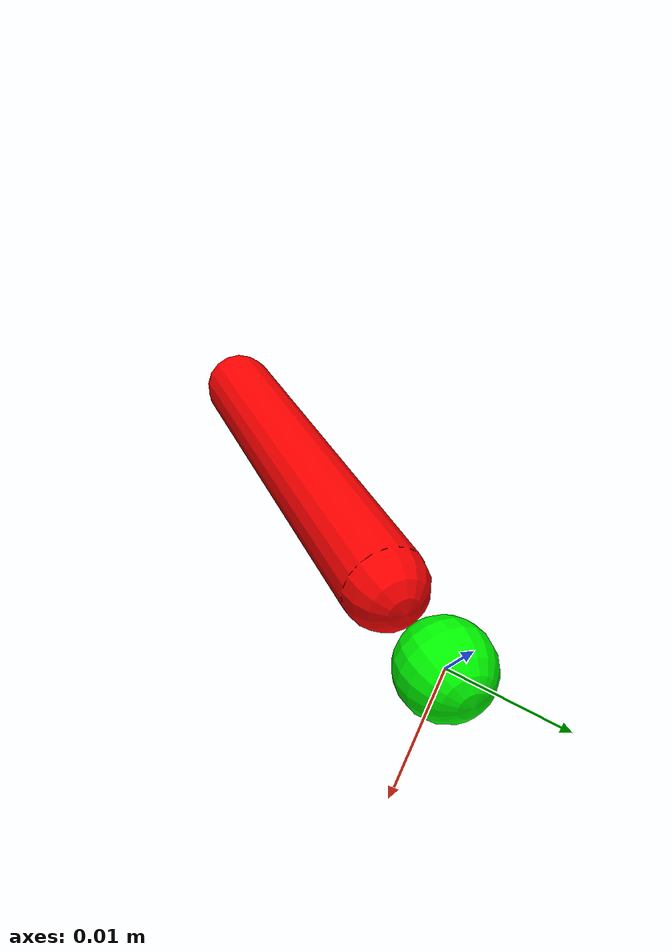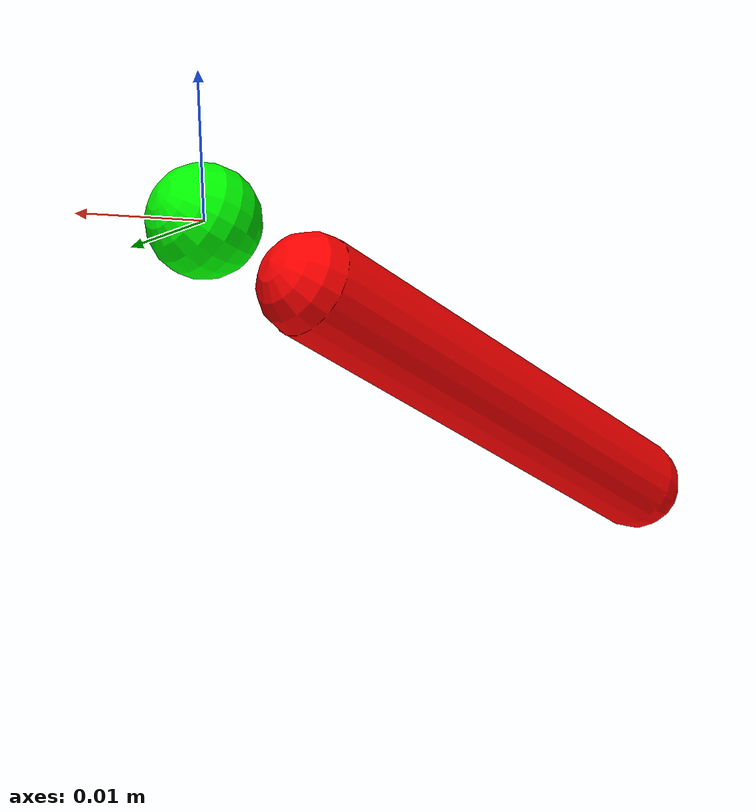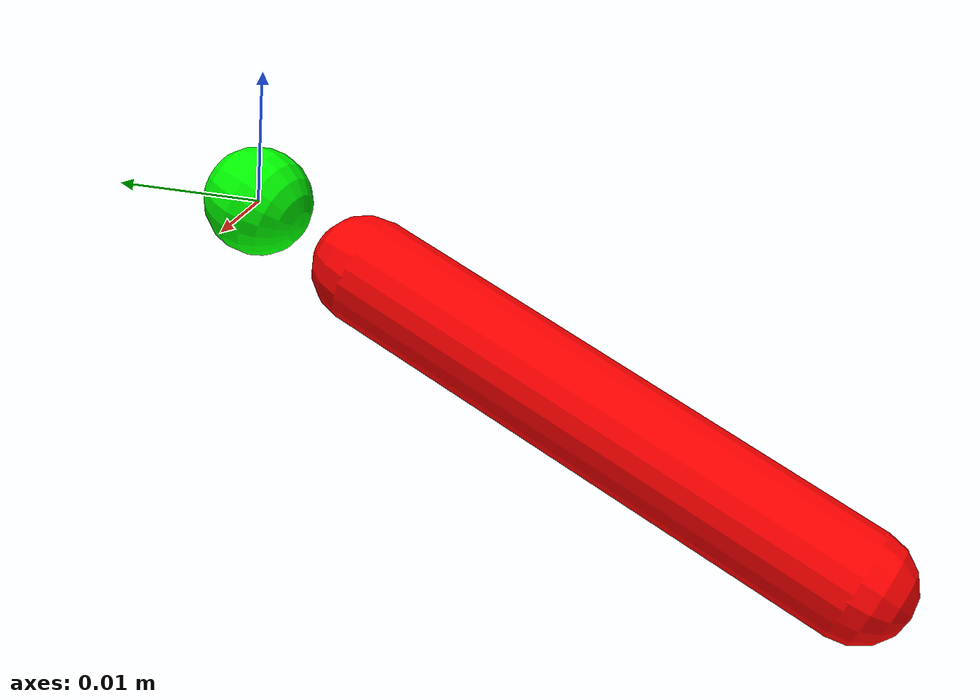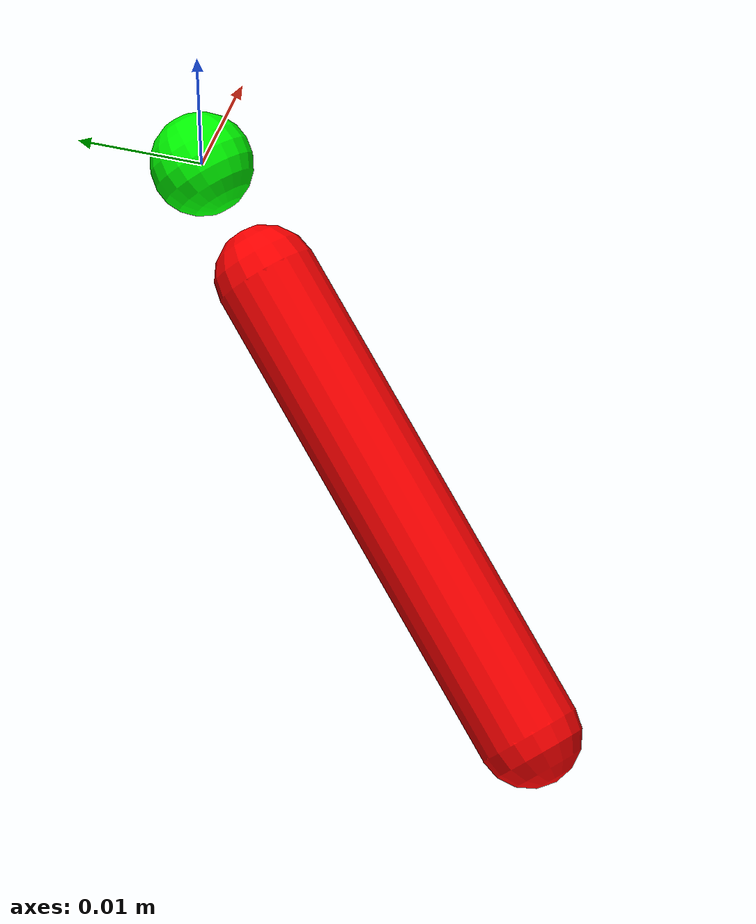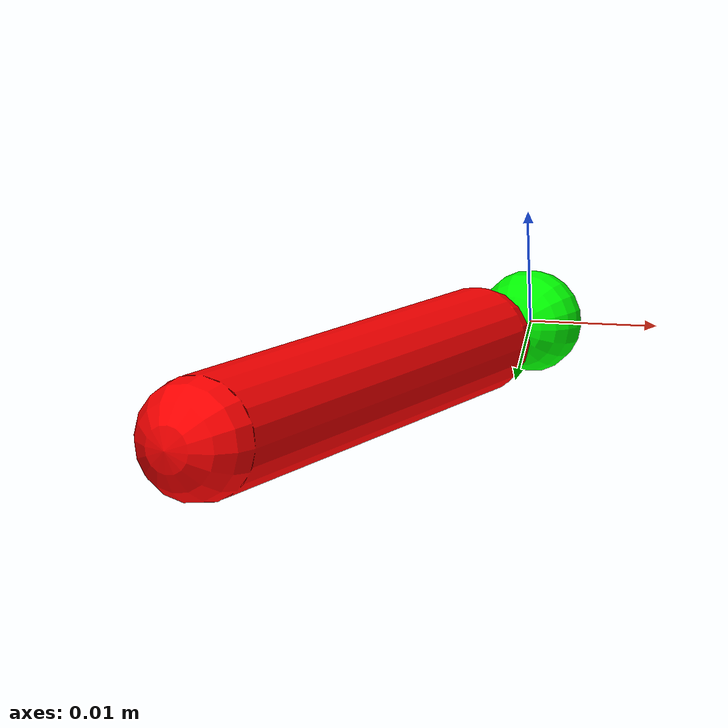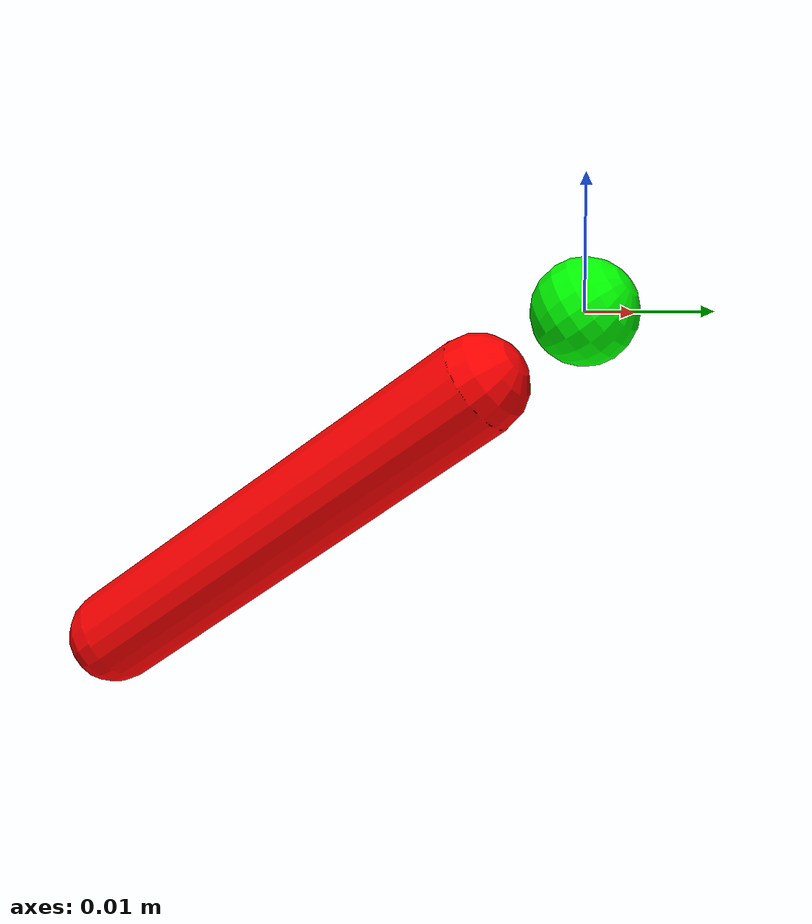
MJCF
<mujoco model="colon_model">

  <compiler meshdir="../meshes" texturedir="../texture"/>
  <option timestep="0.005" gravity="0 0 0" />

  <visual>
    <headlight active="0"/>
    <quality shadowsize="0"/>
    <map fogstart="0" fogend="0.1" znear="0.0005"/>
    <global offwidth="2048" offheight="2048"/>
  </visual>

  <asset>
    <mesh name="colon_mesh" file="model.obj" scale="0.01 0.01 0.01"/>
    <texture name="colon_tex" type="2d" file="colon_texture.png"/>
    <texture name="floor_tex" type="2d" builtin="checker" width="64" height="64" rgb1="1 1 1" rgb2="0 0 0"/>

    <material name="colon_material" texture="colon_tex" specular="0.2" shininess="0.9" reflectance="0"/>
    <material name="floor_mat" texture="floor_tex" specular="0.05" shininess="0.05"/>
  </asset>

  <worldbody>
    <geom name="floor" type="plane" size="32 32 0.001" material="floor_mat"
          pos="0 0 -3.0" contype="0" conaffinity="0"/>

    <geom name="colon_geom" type="mesh" mesh="colon_mesh" material="colon_material"
          contype="0" conaffinity="0"/>

    <body name="camera_rig" mocap="true" pos="0 0 0" euler="130 -30 90">
      <geom name="rig_tip" type="sphere" size="0.004" rgba="0 1 0 1" pos="0 0 0"/>
      <geom name="rig_handle" type="capsule" size="0.004" fromto="0 0 0.01 0 0 0.05" rgba="1 0 0 1"/>

      <camera name="endoscope_cam" pos="0 0 0" mode="fixed" fovy="120"/>

      <light pos="0 0 0" dir="0 0 -1"
             cutoff="100" exponent="30"
             attenuation="0 0 80"
             diffuse="10 10 10" specular="5 5 5"/>
    </body>
  </worldbody>

</mujoco>
